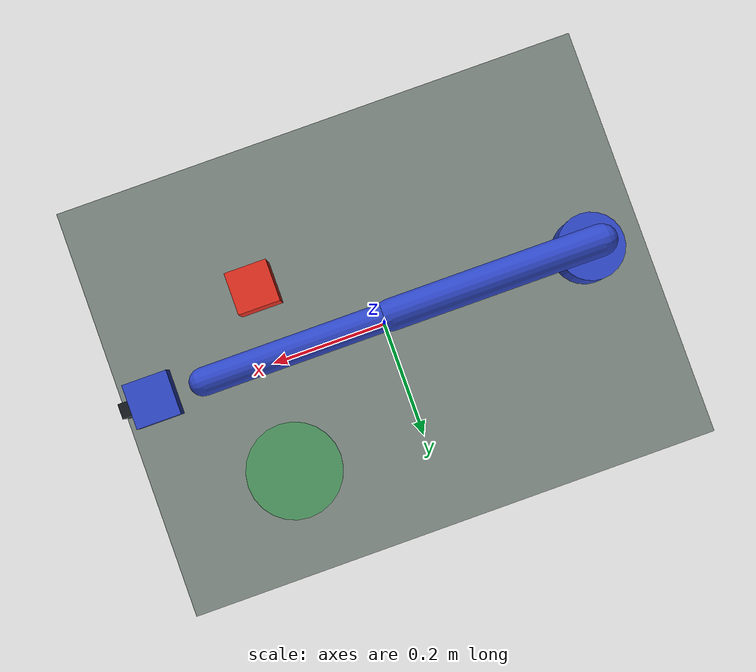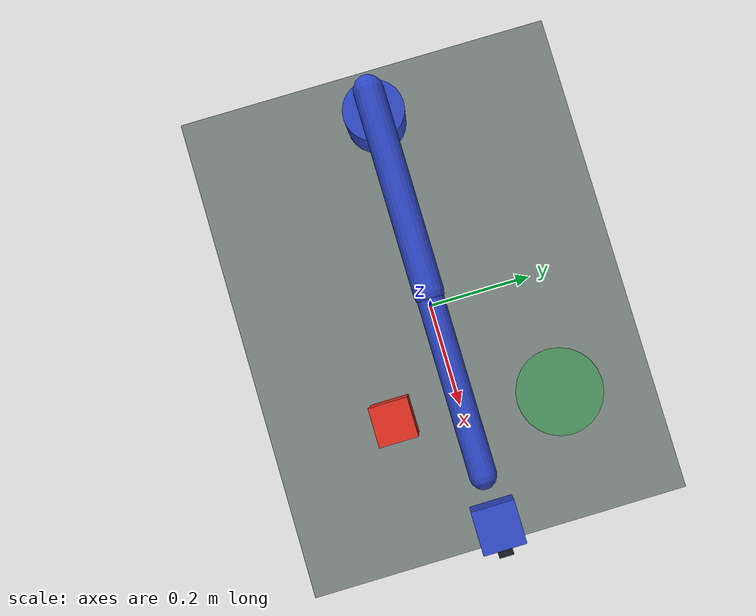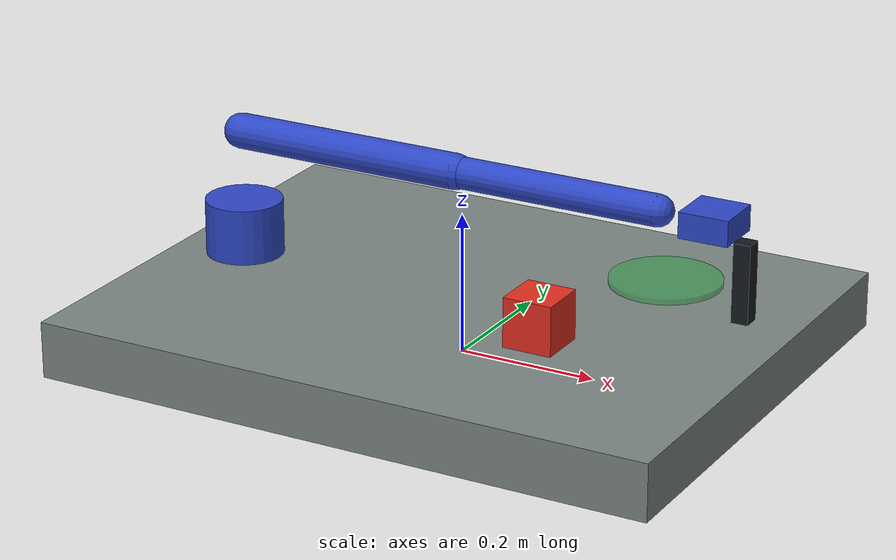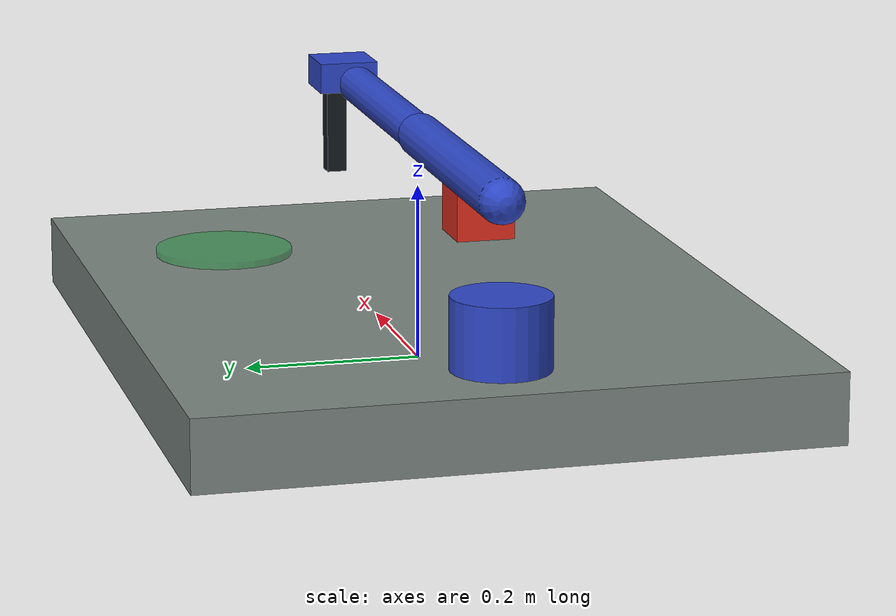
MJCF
<mujoco model="text2mujoco_arm_pick_place_d49f06e0bc7a">
  <!--generator=text2mujoco-0.1.0; arm_schema=1.0; seed=11; run_id=d49f06e0bc7a; assisted_grasp=true-->
  <compiler angle="radian" coordinate="local" />
  <option gravity="0 0 -9.81" timestep="0.002" integrator="implicitfast" cone="elliptic" />
  <default>
    <geom condim="4" friction="0.8 0.02 0.001" solref="0.008 1" solimp="0.9 0.95 0.001" />
    <joint damping="2.2" armature="0.015" />
  </default>
  <asset>
    <material name="table_mat" rgba="0.48 0.52 0.5 1" />
    <material name="arm_mat" rgba="0.18 0.28 0.78 1" />
    <material name="cube_mat" rgba="0.88 0.18 0.12 1" />
    <material name="target_mat" rgba="0.1 0.68 0.24 0.45" />
    <material name="finger_mat" rgba="0.08 0.1 0.12 1" />
  </asset>
  <worldbody>
    <light name="arm_key_light" pos="0 -1.8 2.5" dir="0 1 -1" />
    <camera name="arm_overview" pos="0 -1.45 0.95" xyaxes="1 0 0 0 0.55 0.83" />
    <geom name="table" type="box" pos="0 0 0.04" size="0.45 0.35 0.04" material="table_mat" />
    <body name="arm_target" pos="0.22 0.18 0.084">
      <geom name="arm_target_visual" type="cylinder" size="0.08 0.004" material="target_mat" contype="0" conaffinity="0" />
    </body>
    <body name="cube" pos="0.18 -0.12 0.13">
      <freejoint name="cube_free" />
      <geom name="cube_collision" type="box" size="0.035 0.035 0.035" mass="0.12" material="cube_mat" friction="0.8 0.02 0.001" />
    </body>
    <body name="arm_base" pos="-0.35 0 0.08">
      <joint name="base_yaw" type="hinge" axis="0 0 1" range="-2.7 2.7" />
      <geom name="base_column" type="cylinder" size="0.055 0.08" material="arm_mat" />
      <body name="shoulder_link" pos="0 0 0.18">
        <joint name="shoulder" type="hinge" axis="0 1 0" range="-1.4 1.6" />
        <geom name="upper_arm" type="capsule" fromto="0 0 0 0.34 0 0" size="0.025" material="arm_mat" />
        <body name="elbow_link" pos="0.34 0 0">
          <joint name="elbow" type="hinge" axis="0 1 0" range="-2.5 0.2" />
          <geom name="forearm" type="capsule" fromto="0 0 0 0.3 0 0" size="0.022" material="arm_mat" />
          <body name="wrist_link" pos="0.3 0 0">
            <joint name="wrist" type="hinge" axis="0 1 0" range="-1.8 1.8" />
            <body name="gripper_palm" pos="0.08 0 0">
              <geom name="gripper_palm_geom" type="box" size="0.035 0.035 0.018" material="arm_mat" />
              <body name="left_finger_body" pos="0.025 0 -0.04">
                <joint name="left_finger" type="slide" axis="0 1 0" range="0.0175 0.055" />
                <geom name="left_finger_geom" type="box" pos="0.02 0 -0.035" size="0.012 0.012 0.055" material="finger_mat" friction="1.2 0.02 0.001" />
              </body>
              <body name="right_finger_body" pos="0.025 0 -0.04">
                <joint name="right_finger" type="slide" axis="0 -1 0" range="0.0175 0.055" />
                <geom name="right_finger_geom" type="box" pos="0.02 0 -0.035" size="0.012 0.012 0.055" material="finger_mat" friction="1.2 0.02 0.001" />
              </body>
            </body>
          </body>
        </body>
      </body>
    </body>
  </worldbody>
  <actuator>
    <position name="move_base_yaw" joint="base_yaw" kp="180" kv="25" ctrllimited="true" ctrlrange="-2.7 2.7" forcelimited="true" forcerange="-80 80" />
    <position name="move_shoulder" joint="shoulder" kp="220" kv="35" ctrllimited="true" ctrlrange="-1.4 1.6" forcelimited="true" forcerange="-80 80" />
    <position name="move_elbow" joint="elbow" kp="190" kv="30" ctrllimited="true" ctrlrange="-2.5 0.2" forcelimited="true" forcerange="-80 80" />
    <position name="move_wrist" joint="wrist" kp="120" kv="18" ctrllimited="true" ctrlrange="-1.8 1.8" forcelimited="true" forcerange="-80 80" />
    <position name="move_left_finger" joint="left_finger" kp="80" kv="6" ctrllimited="true" ctrlrange="0.0175 0.055" forcelimited="true" forcerange="-80 80" />
    <position name="move_right_finger" joint="right_finger" kp="80" kv="6" ctrllimited="true" ctrlrange="0.0175 0.055" forcelimited="true" forcerange="-80 80" />
  </actuator>
</mujoco>
